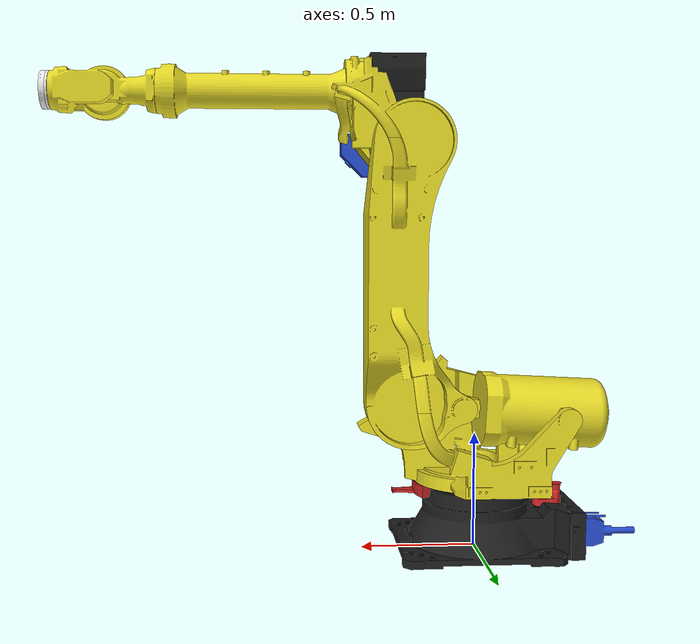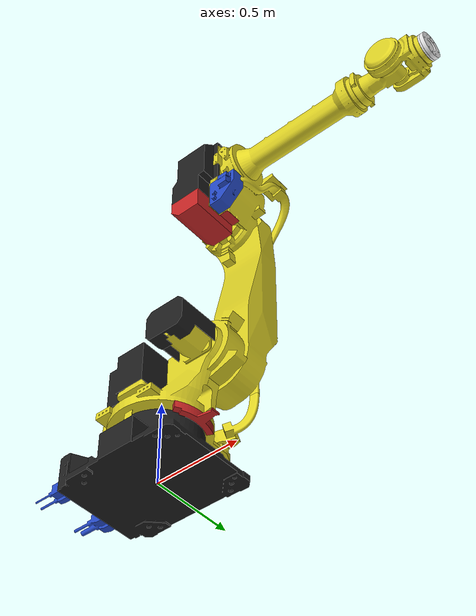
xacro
<?xml version="1.0"?>
<robot name="yefan" xmlns:xacro="http://www.ros.org/wiki/xacro">

    <xacro:include filename="$(find yefan_description)/urdf/yefan_strict_limits.xacro"/>

    <yefan_macro/>

    <link name="world"/>

    <joint name="grounding" type="fixed">
        <parent link="world"/>
        <child link="link1"/>
        <origin
                xyz="0 0 0"
                rpy="0 0 0"/>
    </joint>
    <gazebo>
        <plugin filename="libgazebo_ros_control.so" name="ros_control">
            <robotNamespace>/yefan</robotNamespace>
        </plugin>
    </gazebo>
</robot>

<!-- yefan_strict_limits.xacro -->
<robot xmlns:xacro="http://www.ros.org/wiki/xacro">
    <xacro:macro name="yefan_macro">
        <joint name="joint1" type="revolute">
            <origin xyz="0 0 0.346" rpy="0 0 0"/>
            <parent link="link1"/>
            <child link="link2"/>
            <axis xyz="0 0 1"/>
            <limit
                    lower="-3.14"
                    upper="3.14"
                    effort="500"
                    velocity="2.26893"/>
            <!--  bound +-185 limit effort ? and dynamics? -->
            <dynamics damping="125" friction="155"/>
        </joint>
        <joint name="joint2" type="revolute">
            <origin xyz="0.312 0 0.324" rpy="0 0 0"/>
            <parent link="link2"/>
            <child link="link3"/>
            <axis xyz="0 1 0"/>
            <limit
                    lower="-1.0472"
                    upper="1.32645"
                    effort="1000"
                    velocity="2.00713"/>
            <!--  limit effort, boudns? range=136 ? ? and dynamics? -->
            <dynamics damping="72" friction="50"/>
        </joint>
        <joint name="joint3" type="revolute">
            <origin xyz="0 0 1.075" rpy="0 0 0"/>
            <parent link="link3"/>
            <child link="link4"/>
            <axis xyz="0 -1 0"/>
            <limit
                    lower="-1.83259"
                    upper="1.8726"
                    effort="1000"
                    velocity="2.18166"/>
            <!--  limit effort, boudns? range=312 ? and dynamics? -->
            <dynamics damping="15" friction="48"/>
        </joint>
        <joint name="joint4" type="revolute">
            <origin xyz="0 0 0.225" rpy="0 0 0"/>
            <parent link="link4"/>
            <child link="link5"/>
            <axis xyz="-1 0 0"/>
            <limit
                    lower="-3.14"
                    upper="3.14"
                    effort="50"
                    velocity="3.14159"/>
            <!--  limit effort =moment ? and dynamics? -->
            <dynamics damping="1" friction="1"/>
        </joint>
        <joint name="joint5" type="revolute">
            <origin xyz="1.28 0 0" rpy="0 0 0"/>
            <parent link="link5"/>
            <child link="link6"/>
            <axis xyz="0 -1 0"/>
            <limit
                    lower="-2.18166"
                    upper="2.18166"
                    effort="50"
                    velocity="3.14159"/>
            <!--  limit, bound? range=250 effort ? and dynamics? -->
            <dynamics damping="1" friction="1"/>
        </joint>
        <joint name="joint6" type="revolute">
            <origin xyz="0.215 0 0" rpy="0 0 0"/>
            <parent link="link6"/>
            <child link="link7"/>
            <axis xyz="-1 0 0"/>
            <limit
                    lower="-3.14"
                    upper="3.14"
                    effort="50"
                    velocity="4.53786"/>
            <!--  limit effort ? and dynamics? -->
            <dynamics damping="1" friction="1"/>
        </joint>

        <link name="link1">
            <inertial>
                <mass value="550"/>
                <origin xyz="0 0 0"/>
                <inertia ixx="0.0" ixy="0.0" ixz="0.0"
                         iyy="0.0" iyz="0.0"
                         izz="0.0"/>
            </inertial>
            <collision>
                <origin xyz="0 0 0" rpy="0 0 0"/>
                <geometry>
                    <mesh filename="package://yefan_description/meshes/J1.STL"/>
                </geometry>
            </collision>
            <visual>
                <origin xyz="0 0 0" rpy="0 0 0"/>
                <geometry>
                    <mesh filename="package://yefan_description/meshes/J1.STL"/>
                </geometry>
            </visual>
        </link>

        <link name="link2">
            <inertial>
                <mass value="250"/>
                <origin xyz="0 0 0"/>
                <inertia ixx="0.0" ixy="0.0" ixz="0.0"
                         iyy="0.0" iyz="0.0"
                         izz="0.0"/>
            </inertial>
            <collision>
                <origin xyz="0 0 -0.346" rpy="0 0 0"/>
                <geometry>
                    <mesh filename="package://yefan_description/meshes/J2Base.STL"/>
                </geometry>
            </collision>
            <visual>
                <origin xyz="0 0 -0.346" rpy="0 0 0"/>
                <geometry>
                    <mesh filename="package://yefan_description/meshes/J2Base.STL"/>
                </geometry>
            </visual>
        </link>

        <link name="link3">
            <inertial>
                <mass value="60"/>
                <origin xyz="0 0 0"/>
                <inertia ixx="0.0" ixy="0.0" ixz="0.0"
                         iyy="0.0" iyz="0.0"
                         izz="0.0"/>
            </inertial>
            <collision>
                <origin xyz="-0.312 0 -0.67" rpy="0 0 0"/>
                <geometry>
                    <mesh filename="package://yefan_description/meshes/J2Arm.STL"/>
                </geometry>
            </collision>
            <visual>
                <origin xyz="-0.312 0 -0.67" rpy="0 0 0"/>
                <geometry>
                    <mesh filename="package://yefan_description/meshes/J2Arm.STL"/>
                </geometry>

            </visual>
        </link>

        <link name="link4">
            <inertial>
                <mass value="30"/>
                <origin xyz="0 0 0"/>
                <inertia ixx="0.0" ixy="0.0" ixz="0.0"
                         iyy="0.0" iyz="0.0"
                         izz="0.0"/>
            </inertial>
            <collision>
                <origin xyz="-0.312 0 -1.745" rpy="0 0 0"/>
                <geometry>
                    <mesh filename="package://yefan_description/meshes/J3.STL"/>
                </geometry>
            </collision>
            <visual>
                <origin xyz="-0.312 0 -1.745" rpy="0 0 0"/>
                <geometry>
                    <mesh filename="package://yefan_description/meshes/J3.STL"/>
                </geometry>

            </visual>
        </link>

        <link name="link5">
            <inertial>
                <mass value="15"/>
                <origin xyz="0 0 0"/>
                <inertia ixx="0.0" ixy="0.0" ixz="0.0"
                         iyy="0.0" iyz="0.0"
                         izz="0.0"/>
            </inertial>
            <collision>
                <origin xyz="-0.312 0 -1.97" rpy="0 0 0"/>
                <geometry>
                    <mesh filename="package://yefan_description/meshes/J4.STL"/>
                </geometry>
            </collision>
            <visual>
                <origin xyz="-0.312 0 -1.97" rpy="0 0 0"/>
                <geometry>
                    <mesh filename="package://yefan_description/meshes/J4.STL"/>
                </geometry>

            </visual>
        </link>

        <link name="link6">
            <inertial>
                <mass value="20"/>
                <origin xyz="0 0 0"/>
                <inertia ixx="0.0" ixy="0.0" ixz="0.0"
                         iyy="0.0" iyz="0.0"
                         izz="0.0"/>
            </inertial>
            <collision>
                <origin xyz="-1.592 0 -1.97" rpy="0 0 0"/>
                <geometry>
                    <mesh filename="package://yefan_description/meshes/J5.STL"/>
                </geometry>
            </collision>
            <visual>
                <origin xyz="-1.592 0 -1.97" rpy="0 0 0"/>
                <geometry>
                    <mesh filename="package://yefan_description/meshes/J5.STL"/>
                </geometry>

            </visual>
        </link>

        <link name="link7">
            <inertial>
                <mass value="2"/>
                <origin xyz="0 0 0"/>
                <inertia ixx="0.0" ixy="0.0" ixz="0.0"
                         iyy="0.0" iyz="0.0"
                         izz="0.0"/>
            </inertial>
            <collision>
                <origin xyz="-1.807 0 -1.97" rpy="0 0 0"/>
                <geometry>
                    <mesh filename="package://yefan_description/meshes/J6.STL"/>
                </geometry>
            </collision>
            <visual>
                <origin xyz="-1.807 0 -1.97" rpy="0 0 0"/>
                <geometry>
                    <mesh filename="package://yefan_description/meshes/J6.STL"/>
                </geometry>

            </visual>
        </link>
        <gazebo reference="link1">
            <material>Gazebo/Black</material>
        </gazebo>
        <gazebo reference="link2">
            <material>Gazebo/Yellow</material>
        </gazebo>
        <gazebo reference="link3">
            <material>Gazebo/Yellow</material>
        </gazebo>
        <gazebo reference="link4">
            <material>Gazebo/Yellow</material>
        </gazebo>
        <gazebo reference="link5">
            <material>Gazebo/Yellow</material>
        </gazebo>
        <gazebo reference="link6">
            <material>Gazebo/Yellow</material>
        </gazebo>
        <gazebo reference="link7">
            <material>Gazebo/White</material>
        </gazebo>

        <xacro:macro name="joint_transmission_macro" params="joint_name">
            <transmission name="${joint_name}_transmssion">
                <type>transmission_interface/SimpleTransmission</type>
                <joint name="${joint_name}">
                    <hardwareInterface>hardware_interface/EffortJointInterface</hardwareInterface>
                </joint>
                <actuator name="${joint_name}_motor">
                    <hardwareInterface>EffortJointInterface</hardwareInterface>
                    <mechanicalReduction>1</mechanicalReduction>
                </actuator>
            </transmission>
            <gazebo reference="${joint_name}">
                <implicitSpringDamper>1</implicitSpringDamper>
            </gazebo>
        </xacro:macro>

        <joint_transmission_macro joint_name="joint1"/>
        <joint_transmission_macro joint_name="joint2"/>
        <joint_transmission_macro joint_name="joint3"/>
        <joint_transmission_macro joint_name="joint4"/>
        <joint_transmission_macro joint_name="joint5"/>
        <joint_transmission_macro joint_name="joint6"/>

        <xacro:include filename="$(find yefan_description)/urdf/additions.xacro"/>
    </xacro:macro>
</robot>

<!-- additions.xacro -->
<robot>
    <joint name="joint_balancercase" type="fixed">
        <origin xyz="0 0 0" rpy="0 0 0"/>
        <parent link="link2"/>
        <child link="link_balancercase"/>
    </joint>
    <link name="link_balancercase">
        <inertial>
            <mass value="150"/>
            <origin xyz="0 0 0"/>
            <inertia ixx="0.0" ixy="0.0" ixz="0.0"
                     iyy="0.0" iyz="0.0"
                     izz="0.0"/>
        </inertial>
        <collision>
            <origin xyz="0 0 -0.346" rpy="0 0 0"/>
            <geometry>
                <mesh filename="package://yefan_description/meshes/BalancerCase.STL"/>
            </geometry>
        </collision>
        <visual>
            <origin xyz="0 0 -0.346" rpy="0 0 0"/>
            <geometry>
                <mesh filename="package://yefan_description/meshes/BalancerCase.STL"/>
            </geometry>

        </visual>
    </link>
    <gazebo reference="link_balancercase">
        <material>Gazebo/Yellow</material>
    </gazebo>

    <joint name="joint_balancerrod" type="fixed">
        <origin xyz="0 0 0" rpy="0 0 0"/>
        <parent link="link2"/>
        <child link="link_balancerrod"/>
    </joint>
    <link name="link_balancerrod">
        <inertial>
            <mass value="15"/>
            <origin xyz="0 0 0"/>
            <inertia ixx="0.0" ixy="0.0" ixz="0.0"
                     iyy="0.0" iyz="0.0"
                     izz="0.0"/>
        </inertial>
        <collision>
            <origin xyz="0 0 -0.346" rpy="0 0 0"/>
            <geometry>
                <mesh filename="package://yefan_description/meshes/BalancerRod.STL"/>
            </geometry>
        </collision>
        <visual>
            <origin xyz="0 0 -0.346" rpy="0 0 0"/>
            <geometry>
                <mesh filename="package://yefan_description/meshes/BalancerRod.STL"/>
            </geometry>

        </visual>
    </link>
    <gazebo reference="link_balancerrod">
        <material>Gazebo/Yellow</material>
    </gazebo>

    <joint name="joint_stopper1a" type="fixed">
        <origin xyz="0 0 0" rpy="0 0 0"/>
        <parent link="link1"/>
        <child link="link_stopper1a"/>
    </joint>
    <link name="link_stopper1a">
        <inertial>
            <mass value="2"/>
            <origin xyz="0 0 0"/>
            <inertia ixx="0.0" ixy="0.0" ixz="0.0"
                     iyy="0.0" iyz="0.0"
                     izz="0.0"/>
        </inertial>
        <collision>
            <origin
                    xyz="0 0 0"
                    rpy="0 0 0"/>
            <geometry>
                <mesh filename="package://yefan_description/meshes/stopper_J1_A.STL"/>
            </geometry>
        </collision>
        <visual>
            <origin xyz="0 0 0" rpy="0 0 0"/>
            <geometry>
                <mesh filename="package://yefan_description/meshes/stopper_J1_A.STL"/>
            </geometry>

        </visual>
    </link>
    <gazebo reference="link_stopper1a">
        <material>Gazebo/Red</material>
    </gazebo>

    <joint name="joint_stopper1b" type="fixed">
        <origin xyz="0 0 0" rpy="0 0 0"/>
        <parent link="link1"/>
        <child link="link_stopper1b"/>
    </joint>
    <link name="link_stopper1b">
        <inertial>
            <mass value="2"/>
            <origin xyz="0 0 0"/>
            <inertia ixx="0.0" ixy="0.0" ixz="0.0"
                     iyy="0.0" iyz="0.0"
                     izz="0.0"/>
        </inertial>
        <collision>
            <origin
                    xyz="0 0 0"
                    rpy="0 0 0"/>
            <geometry>
                <mesh filename="package://yefan_description/meshes/stopper_J1_B.STL"/>
            </geometry>
        </collision>
        <visual>
            <origin xyz="0 0 0" rpy="0 0 0"/>
            <geometry>
                <mesh filename="package://yefan_description/meshes/stopper_J1_B.STL"/>
            </geometry>

        </visual>
    </link>
    <gazebo reference="link_stopper1b">
        <material>Gazebo/Red</material>
    </gazebo>

    <joint name="joint_h501_j1" type="fixed">
        <origin xyz="0 0 0" rpy="0 0 0"/>
        <parent link="link1"/>
        <child link="link_h501_j1"/>
    </joint>
    <link name="link_h501_j1">
        <inertial>
            <mass value="5"/>
            <origin xyz="0 0 0"/>
            <inertia ixx="0.0" ixy="0.0" ixz="0.0"
                     iyy="0.0" iyz="0.0"
                     izz="0.0"/>
        </inertial>
        <collision>
            <origin
                    xyz="0 0 0"
                    rpy="0 0 0"/>
            <geometry>
                <mesh filename="package://yefan_description/meshes/H501_J1.STL"/>
            </geometry>
        </collision>
        <visual>
            <origin xyz="0 0 0" rpy="0 0 0"/>
            <geometry>
                <mesh filename="package://yefan_description/meshes/H501_J1.STL"/>
            </geometry>

        </visual>
    </link>
    <gazebo reference="link_h501_j1">
        <material>Gazebo/Blue</material>
    </gazebo>

    <joint name="joint_h501_j3" type="fixed">
        <origin xyz="0 0 0" rpy="0 0 0"/>
        <parent link="link4"/>
        <child link="link_h501_j3"/>
    </joint>
    <link name="link_h501_j3">
        <inertial>
            <mass value="5"/>
            <origin xyz="0 0 0"/>
            <inertia ixx="0.0" ixy="0.0" ixz="0.0"
                     iyy="0.0" iyz="0.0"
                     izz="0.0"/>
        </inertial>
        <collision>
            <origin xyz="-0.312 0 -1.745" rpy="0 0 0"/>
            <geometry>
                <mesh filename="package://yefan_description/meshes/H501_J3.STL"/>
            </geometry>
        </collision>
        <visual>
            <origin xyz="-0.312 0 -1.745" rpy="0 0 0"/>
            <geometry>
                <mesh filename="package://yefan_description/meshes/H501_J3.STL"/>
            </geometry>
        </visual>
    </link>
    <gazebo reference="link_h501_j3">
        <material>Gazebo/Blue</material>
    </gazebo>

    <joint name="joint_mcover1" type="fixed">
        <origin xyz="0 0 0" rpy="0 0 0"/>
        <parent link="link2"/>
        <child link="link_mcover1"/>
    </joint>
    <link name="link_mcover1">
        <inertial>
            <mass value="10"/>
            <origin xyz="0 0 0"/>
            <inertia ixx="0.0" ixy="0.0" ixz="0.0"
                     iyy="0.0" iyz="0.0"
                     izz="0.0"/>
        </inertial>
        <collision>
            <origin xyz="0 0 -0.346" rpy="0 0 0"/>
            <geometry>
                <mesh filename="package://yefan_description/meshes/MotorCover_J1.STL"/>
            </geometry>
        </collision>
        <visual>
            <origin xyz="0 0 -0.346" rpy="0 0 0"/>
            <geometry>
                <mesh filename="package://yefan_description/meshes/MotorCover_J1.STL"/>
            </geometry>

        </visual>
    </link>
    <gazebo reference="link_mcover1">
        <material>Gazebo/Black</material>
    </gazebo>

    <joint name="joint_mcover2" type="fixed">
        <origin xyz="0 0 0" rpy="0 0 0"/>
        <parent link="link2"/>
        <child link="link_mcover2"/>
    </joint>
    <link name="link_mcover2">
        <inertial>
            <mass value="10"/>
            <origin xyz="0 0 0"/>
            <inertia ixx="0.0" ixy="0.0" ixz="0.0"
                     iyy="0.0" iyz="0.0"
                     izz="0.0"/>
        </inertial>
        <collision>
            <origin xyz="0 0 -0.346" rpy="0 0 0"/>
            <geometry>
                <mesh filename="package://yefan_description/meshes/MotorCover_J2.STL"/>
            </geometry>
        </collision>
        <visual>
            <origin xyz="0 0 -0.346" rpy="0 0 0"/>
            <geometry>
                <mesh filename="package://yefan_description/meshes/MotorCover_J2.STL"/>
            </geometry>
        </visual>
    </link>
    <gazebo reference="link_mcover2">
        <material>Gazebo/Black</material>
    </gazebo>

    <joint name="joint_mcover3" type="fixed">
        <origin xyz="0 0 0" rpy="0 0 0"/>
        <parent link="link4"/>
        <child link="link_mcover3"/>
    </joint>
    <link name="link_mcover3">
        <inertial>
            <mass value="5"/>
            <origin xyz="0 0 0"/>
            <inertia ixx="0.0" ixy="0.0" ixz="0.0"
                     iyy="0.0" iyz="0.0"
                     izz="0.0"/>
        </inertial>
        <collision>
            <origin xyz="-0.312 0 -1.745" rpy="0 0 0"/>
            <geometry>
                <mesh filename="package://yefan_description/meshes/MotorCover_J3456_bottom.STL"/>
            </geometry>
        </collision>
        <visual>
            <origin xyz="-0.312 0 -1.745" rpy="0 0 0"/>
            <geometry>
                <mesh filename="package://yefan_description/meshes/MotorCover_J3456_bottom.STL"/>
            </geometry>

        </visual>
    </link>
    <gazebo reference="link_mcover3">
        <material>Gazebo/Red</material>
    </gazebo>

    <joint name="joint_mcover3_top" type="fixed">
        <origin xyz="0 0 0" rpy="0 0 0"/>
        <parent link="link4"/>
        <child link="link_mcover3_top"/>
    </joint>
    <link name="link_mcover3_top">
        <inertial>
            <mass value="5"/>
            <origin xyz="0 0 0"/>
            <inertia ixx="0.0" ixy="0.0" ixz="0.0"
                     iyy="0.0" iyz="0.0"
                     izz="0.0"/>
        </inertial>
        <collision>
            <origin xyz="-0.312 0 -1.745" rpy="0 0 0"/>
            <geometry>
                <mesh filename="package://yefan_description/meshes/MotorCover_J3456_top.STL"/>
            </geometry>
        </collision>
        <visual>
            <origin xyz="-0.312 0 -1.745" rpy="0 0 0"/>
            <geometry>
                <mesh filename="package://yefan_description/meshes/MotorCover_J3456_top.STL"/>
            </geometry>
        </visual>
    </link>
    <gazebo reference="link_mcover3_top">
        <material>Gazebo/Black</material>
    </gazebo>

    <joint name="joint_insflange" type="fixed">
        <origin xyz="0 0 0" rpy="0 0 0"/>
        <parent link="link7"/>
        <child link="link_insflange"/>
    </joint>
    <link name="link_insflange">
        <inertial>
            <mass value="3"/>
            <origin xyz="0 0 0"/>
            <inertia ixx="0.0" ixy="0.0" ixz="0.0"
                     iyy="0.0" iyz="0.0"
                     izz="0.0"/>
        </inertial>
        <collision>
            <origin xyz="-1.807 0 -1.97" rpy="0 0 0"/>
            <geometry>
                <mesh filename="package://yefan_description/meshes/insulated_flange.STL"/>
            </geometry>
        </collision>
        <visual>
            <origin xyz="-1.807 0 -1.97" rpy="0 0 0"/>
            <geometry>
                <mesh filename="package://yefan_description/meshes/insulated_flange.STL"/>
            </geometry>

        </visual>
    </link>
    <gazebo reference="link_insflange">
        <material>Gazebo/White</material>
    </gazebo>
</robot>
